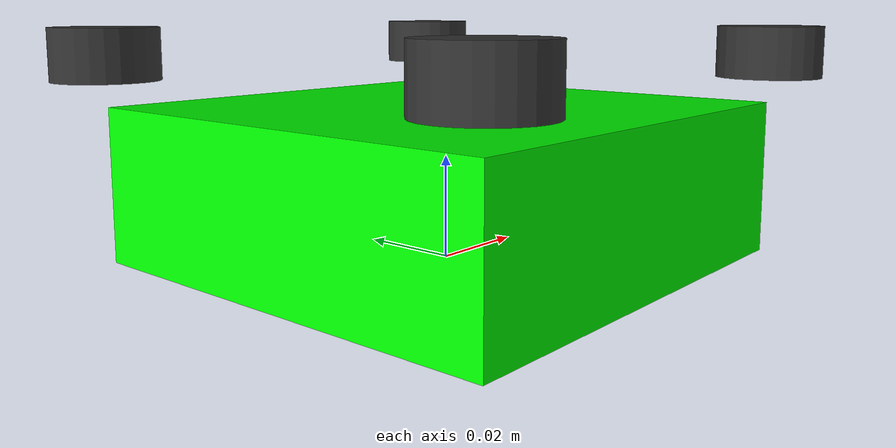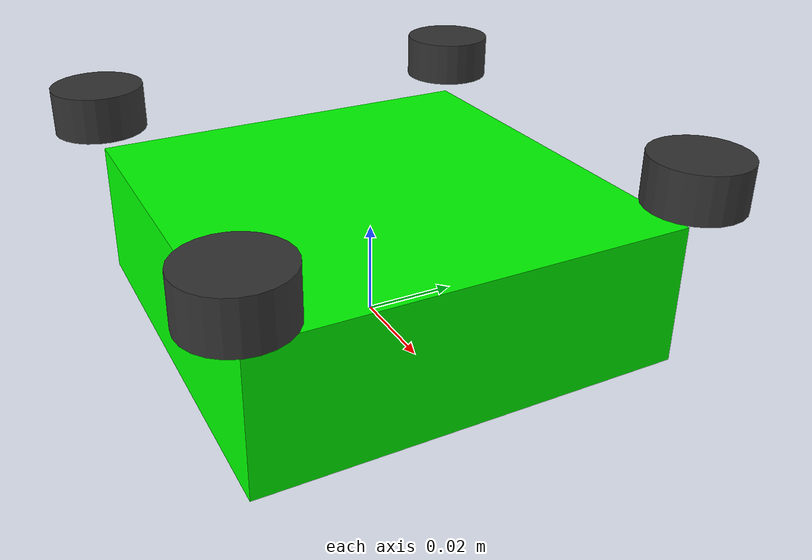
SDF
<?xml version="1.0" ?>
<sdf version="1.5">
  <model name="sim_crazyflie">
    <static>false</static>
    <link name="body">
      <pose>0 0 0.015 0 0 0</pose>
      <inertial>
        <mass>0.027</mass>
        <inertia>
          <ixx>0.001</ixx>
          <iyy>0.001</iyy>
          <izz>0.002</izz>
        </inertia>
      </inertial>
      <collision name="collision">
        <geometry>
          <box>
            <size>0.09 0.09 0.03</size>
          </box>
        </geometry>
      </collision>
      <visual name="visual">
        <geometry>
          <box>
            <size>0.09 0.09 0.03</size>
          </box>
        </geometry>
        <material>
          <ambient>0 1 0 1</ambient>
          <diffuse>0 1 0 1</diffuse>
        </material>
      </visual>
      <velocity_decay>
        <linear>0.05</linear>
        <angular>0.05</angular>
      </velocity_decay>
    </link>
    <!-- Bracci e rotori -->
    <link name="rotor1">
      <pose>0.045 0.045 0.04 0 0 0</pose>
      <inertial>
        <mass>0.005</mass>
        <inertia>
          <ixx>0.00001</ixx>
          <iyy>0.00001</iyy>
          <izz>0.00002</izz>
        </inertia>
      </inertial>
      <collision name="collision">
        <geometry>
          <cylinder>
            <radius>0.01</radius>
            <length>0.01</length>
          </cylinder>
        </geometry>
      </collision>
      <visual name="visual">
        <geometry>
          <cylinder>
            <radius>0.01</radius>
            <length>0.01</length>
          </cylinder>
        </geometry>
        <material>
          <ambient>0.2 0.2 0.2 1</ambient>
          <diffuse>0.2 0.2 0.2 1</diffuse>
        </material>
      </visual>
      <velocity_decay>
        <linear>0.05</linear>
        <angular>0.05</angular>
      </velocity_decay>
    </link>
    <link name="rotor2">
      <pose>-0.045 0.045 0.04 0 0 0</pose>
      <inertial>
        <mass>0.005</mass>
        <inertia>
          <ixx>0.00001</ixx>
          <iyy>0.00001</iyy>
          <izz>0.00002</izz>
        </inertia>
      </inertial>
      <collision name="collision">
        <geometry>
          <cylinder>
            <radius>0.01</radius>
            <length>0.01</length>
          </cylinder>
        </geometry>
      </collision>
      <visual name="visual">
        <geometry>
          <cylinder>
            <radius>0.01</radius>
            <length>0.01</length>
          </cylinder>
        </geometry>
        <material>
          <ambient>0.2 0.2 0.2 1</ambient>
          <diffuse>0.2 0.2 0.2 1</diffuse>
        </material>
      </visual>
      <velocity_decay>
        <linear>0.05</linear>
        <angular>0.05</angular>
      </velocity_decay>
    </link>
    <link name="rotor3">
      <pose>-0.045 -0.045 0.04 0 0 0</pose>
      <inertial>
        <mass>0.005</mass>
        <inertia>
          <ixx>0.00001</ixx>
          <iyy>0.00001</iyy>
          <izz>0.00002</izz>
        </inertia>
      </inertial>
      <collision name="collision">
        <geometry>
          <cylinder>
            <radius>0.01</radius>
            <length>0.01</length>
          </cylinder>
        </geometry>
      </collision>
      <visual name="visual">
        <geometry>
          <cylinder>
            <radius>0.01</radius>
            <length>0.01</length>
          </cylinder>
        </geometry>
        <material>
          <ambient>0.2 0.2 0.2 1</ambient>
          <diffuse>0.2 0.2 0.2 1</diffuse>
        </material>
      </visual>
      <velocity_decay>
        <linear>0.05</linear>
        <angular>0.05</angular>
      </velocity_decay>
    </link>
    <link name="rotor4">
      <pose>0.045 -0.045 0.04 0 0 0</pose>
      <inertial>
        <mass>0.005</mass>
        <inertia>
          <ixx>0.00001</ixx>
          <iyy>0.00001</iyy>
          <izz>0.00002</izz>
        </inertia>
      </inertial>
      <collision name="collision">
        <geometry>
          <cylinder>
            <radius>0.01</radius>
            <length>0.01</length>
          </cylinder>
        </geometry>
      </collision>
      <visual name="visual">
        <geometry>
          <cylinder>
            <radius>0.01</radius>
            <length>0.01</length>
          </cylinder>
        </geometry>
        <material>
          <ambient>0.2 0.2 0.2 1</ambient>
          <diffuse>0.2 0.2 0.2 1</diffuse>
        </material>
      </visual>
      <velocity_decay>
        <linear>0.05</linear>
        <angular>0.05</angular>
      </velocity_decay>
    </link>

    <joint name="rotor1_joint" type="fixed">
      <parent>body</parent>
      <child>rotor1</child>
    </joint>
    <joint name="rotor2_joint" type="fixed">
      <parent>body</parent>
      <child>rotor2</child>
    </joint>
    <joint name="rotor3_joint" type="fixed">
      <parent>body</parent>
      <child>rotor3</child>
    </joint>
    <joint name="rotor4_joint" type="fixed">
      <parent>body</parent>
      <child>rotor4</child>
    </joint>

    <!-- Plugin dei rotori -->
    <plugin name="crazyflie_rotor_plugin" filename="libcrazyflie_rotor_plugin.so"/>

    <plugin name="crazyflie_led_plugin" filename="libcrazyflie_led_plugin.so"/>

    <!-- Plugin pubblicazione posizione modello -->
    <plugin name="crazyflie_model_pose_plugin" filename="libcrazyflie_model_pose_plugin.so">
      <publish_period>0.5</publish_period> <!-- Pubblica ogni 0.5 secondi (2Hz) -->
    </plugin>
  </model>
</sdf>
